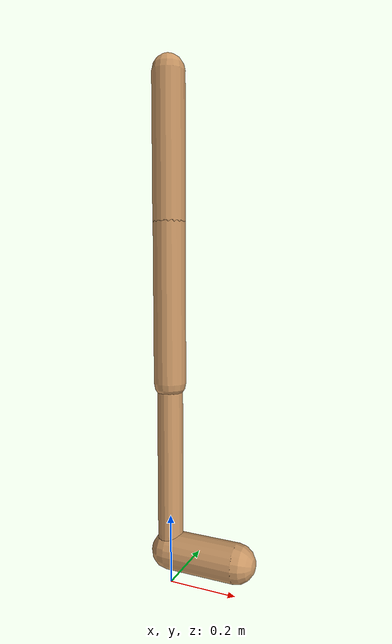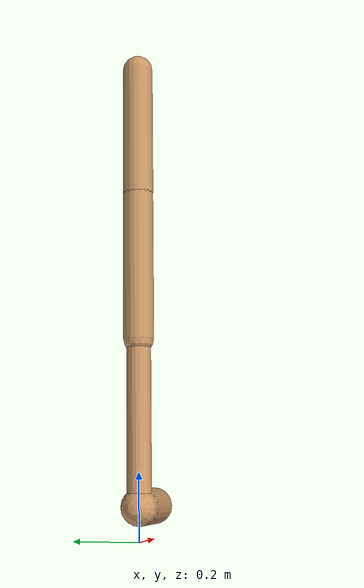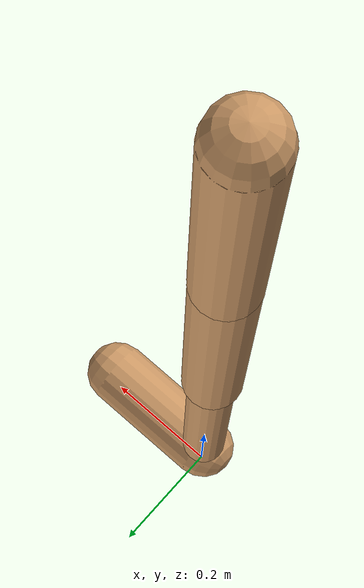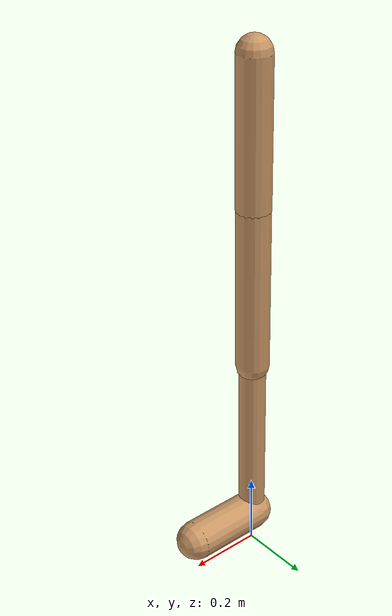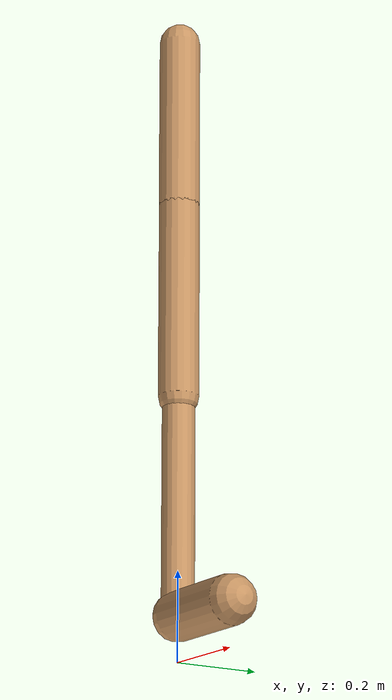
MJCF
<mujoco model="walker2d">
  <compiler angle="degree" coordinate="global" inertiafromgeom="true" />
  <default>
    <joint armature="0.01" damping=".1" limited="true" />
    <geom conaffinity="0" condim="3" contype="1" density="1000" friction="0.8 .1 .1" rgba="0.8 0.6 .4 1" />
  </default>
  <option integrator="RK4" timestep="0.002" />
  <worldbody>

    <body name="torso" pos="0 0 0.012224694090669416">
      <joint armature="0" axis="1 0 0" damping="0" limited="false" name="ignorex" pos="0 0 0" stiffness="0" type="slide" />
      <joint armature="0" axis="0 0 1" damping="0" limited="false" name="ignorez" pos="0 0 0" ref="1.25" stiffness="0" type="slide" />
      <joint armature="0" axis="0 1 0" damping="0" limited="false" name="ignorey" pos="0 0 0" stiffness="0" type="hinge" />
      <geom fromto="0 0 1.45 0 0 1.05" name="torso_geom" size="0.04645845168548943" type="capsule" />
      <body name="thigh">
        <joint axis="0 -1 0" name="thigh_joint" pos="0 0 1.05" range="-150 0" type="hinge" />
        <geom fromto="0.0 0.0 1.05 0.0 0.0 0.5942093554307355" name="thigh_geom" size="0.04580513731221583" type="capsule" />
        <body name="leg" pos="0.0 0.0 -0.00579064456926448">
          <joint axis="0 -1 0" name="leg_joint" pos="0 0 0.6" range="-150 0" type="hinge" />
          <geom fromto="0.0 0.0 0.6 0.0 0.0 0.09356595047859505" name="leg_geom" size="0.03664410984977266" type="capsule" />
          <body name="foot" pos="0.0 0.0 -0.006434049521404958">
            <joint axis="0 -1 0" name="foot_joint" pos="0 0 0.1" range="-45 45" type="hinge" />
            <geom fromto="-0.0 0.0 0.1 0.20432451982119906 0.0 0.1" name="foot_geom" size="0.055195308821925866" type="capsule" />
          </body>
        </body>
      </body>

      <body name="thigh_left">
        <joint axis="0 -1 0" name="thigh_left_joint" pos="0 0 1.05" range="-150 0" type="hinge" />
        <geom fromto="0.0 0.0 1.05 0.0 0.0 0.5942093554307355" name="thigh_left_geom" rgba=".7 .3 .6 1" size="0.04580513731221583" type="capsule" />
        <body name="leg_left" pos="0.0 0.0 -0.00579064456926448">
          <joint axis="0 -1 0" name="leg_left_joint" pos="0 0 0.6" range="-150 0" type="hinge" />
          <geom fromto="0.0 0.0 0.6 0.0 0.0 0.09356595047859505" name="leg_left_geom" rgba=".7 .3 .6 1" size="0.03664410984977266" type="capsule" />
          <body name="foot_left" pos="0.0 0.0 -0.006434049521404958">
            <joint axis="0 -1 0" name="foot_left_joint" pos="0 0 0.1" range="-45 45" type="hinge" />
            <geom fromto="-0.0 0.0 0.1 0.20432451982119906 0.0 0.1" name="foot_left_geom" rgba=".7 .3 .6 1" size="0.055195308821925866" type="capsule" />
          </body>
        </body>
      </body>
    </body>
  </worldbody>
  <actuator>

    <motor ctrllimited="true" ctrlrange="-1.0 1.0" gear="100" joint="thigh_joint" />
    <motor ctrllimited="true" ctrlrange="-1.0 1.0" gear="100" joint="leg_joint" />
    <motor ctrllimited="true" ctrlrange="-1.0 1.0" gear="100" joint="foot_joint" />
    <motor ctrllimited="true" ctrlrange="-1.0 1.0" gear="100" joint="thigh_left_joint" />
    <motor ctrllimited="true" ctrlrange="-1.0 1.0" gear="100" joint="leg_left_joint" />
    <motor ctrllimited="true" ctrlrange="-1.0 1.0" gear="100" joint="foot_left_joint" />

  </actuator>
</mujoco>
